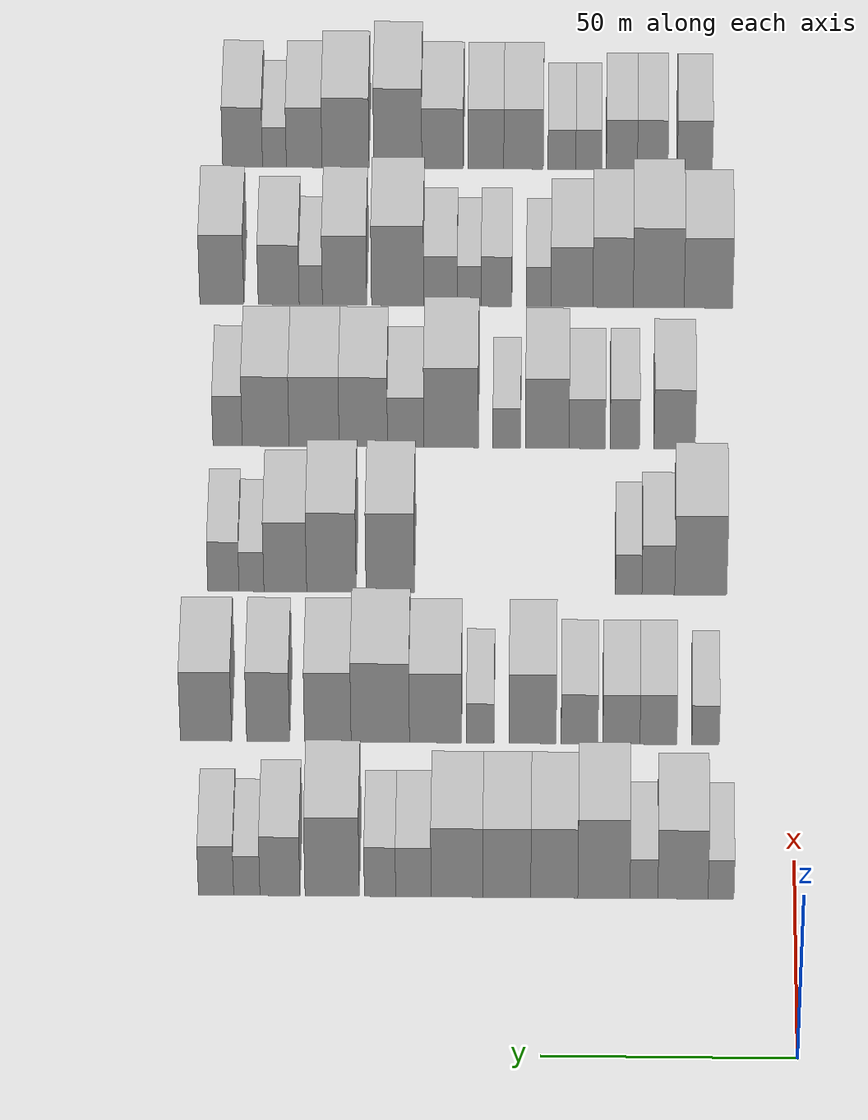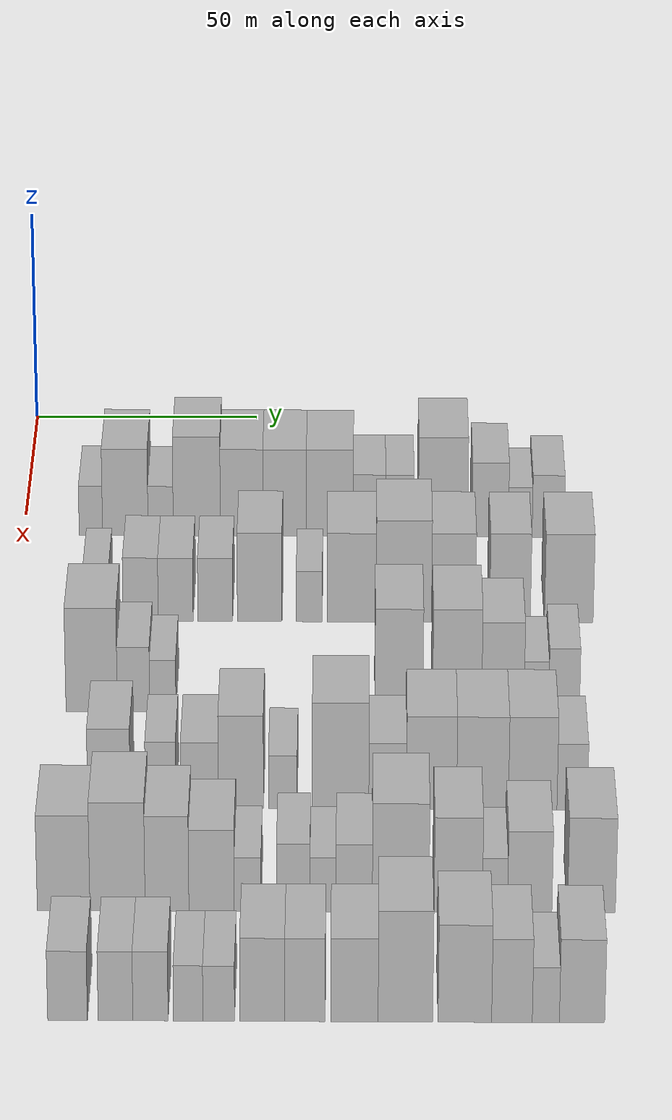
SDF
<sdf version="1.6">
 <world name="default">
  <model name="building_72">
   <static>1</static>
   <pose>50.0000 14.7348 0 0.000000 0.000000 0.000000</pose>
   <link name="link">
    <pose>0 0 6.00 0 0 0</pose>
    <collision name="collision"><geometry><box><size>20.0000 5.1048 12.0000</size></box></geometry></collision>
    <visual name="visual">
     <cast_shadows>0</cast_shadows>
     <geometry><box><size>20.0000 5.1048 12.0000</size></box></geometry>
     <material>
      <script>
       <uri>model://HANNAS_wall/materials/scripts</uri>
       <uri>model://HANNAS_wall/materials/textures</uri>
       <name>vrc/HANNAS_wall</name>
      </script>
     </material>
    </visual>
   </link>
  </model>
  <model name="building_73">
   <static>1</static>
   <pose>50.0000 22.2500 0 0.000000 0.000000 0.000000</pose>
   <link name="link">
    <pose>0 0 10.50 0 0 0</pose>
    <collision name="collision"><geometry><box><size>20.0000 9.9254 21.0000</size></box></geometry></collision>
    <visual name="visual">
     <cast_shadows>0</cast_shadows>
     <geometry><box><size>20.0000 9.9254 21.0000</size></box></geometry>
     <material>
      <script>
       <uri>model://HANNAS_wall/materials/scripts</uri>
       <uri>model://HANNAS_wall/materials/textures</uri>
       <name>vrc/HANNAS_wall</name>
      </script>
     </material>
    </visual>
   </link>
  </model>
  <model name="building_74">
   <static>1</static>
   <pose>50.0000 29.9666 0 0.000000 0.000000 0.000000</pose>
   <link name="link">
    <pose>0 0 6.00 0 0 0</pose>
    <collision name="collision"><geometry><box><size>20.0000 5.5080 12.0000</size></box></geometry></collision>
    <visual name="visual">
     <cast_shadows>0</cast_shadows>
     <geometry><box><size>20.0000 5.5080 12.0000</size></box></geometry>
     <material>
      <script>
       <uri>model://HANNAS_wall/materials/scripts</uri>
       <uri>model://HANNAS_wall/materials/textures</uri>
       <name>vrc/HANNAS_wall</name>
      </script>
     </material>
    </visual>
   </link>
  </model>
  <model name="building_75">
   <static>1</static>
   <pose>50.0000 37.8529 0 0.000000 0.000000 0.000000</pose>
   <link name="link">
    <pose>0 0 12.00 0 0 0</pose>
    <collision name="collision"><geometry><box><size>20.0000 10.2645 24.0000</size></box></geometry></collision>
    <visual name="visual">
     <cast_shadows>0</cast_shadows>
     <geometry><box><size>20.0000 10.2645 24.0000</size></box></geometry>
     <material>
      <script>
       <uri>model://HANNAS_wall/materials/scripts</uri>
       <uri>model://HANNAS_wall/materials/textures</uri>
       <name>vrc/HANNAS_wall</name>
      </script>
     </material>
    </visual>
   </link>
  </model>
  <model name="building_76">
   <static>1</static>
   <pose>50.0000 47.6280 0 0.000000 0.000000 0.000000</pose>
   <link name="link">
    <pose>0 0 10.50 0 0 0</pose>
    <collision name="collision"><geometry><box><size>20.0000 9.2857 21.0000</size></box></geometry></collision>
    <visual name="visual">
     <cast_shadows>0</cast_shadows>
     <geometry><box><size>20.0000 9.2857 21.0000</size></box></geometry>
     <material>
      <script>
       <uri>model://HANNAS_wall/materials/scripts</uri>
       <uri>model://HANNAS_wall/materials/textures</uri>
       <name>vrc/HANNAS_wall</name>
      </script>
     </material>
    </visual>
   </link>
  </model>
  <model name="building_77">
   <static>1</static>
   <pose>50.0000 57.0059 0 0.000000 0.000000 0.000000</pose>
   <link name="link">
    <pose>0 0 10.50 0 0 0</pose>
    <collision name="collision"><geometry><box><size>20.0000 9.4702 21.0000</size></box></geometry></collision>
    <visual name="visual">
     <cast_shadows>0</cast_shadows>
     <geometry><box><size>20.0000 9.4702 21.0000</size></box></geometry>
     <material>
      <script>
       <uri>model://HANNAS_wall/materials/scripts</uri>
       <uri>model://HANNAS_wall/materials/textures</uri>
       <name>vrc/HANNAS_wall</name>
      </script>
     </material>
    </visual>
   </link>
  </model>
  <model name="building_78">
   <static>1</static>
   <pose>50.0000 66.8543 0 0.000000 0.000000 0.000000</pose>
   <link name="link">
    <pose>0 0 10.50 0 0 0</pose>
    <collision name="collision"><geometry><box><size>20.0000 10.2266 21.0000</size></box></geometry></collision>
    <visual name="visual">
     <cast_shadows>0</cast_shadows>
     <geometry><box><size>20.0000 10.2266 21.0000</size></box></geometry>
     <material>
      <script>
       <uri>model://HANNAS_wall/materials/scripts</uri>
       <uri>model://HANNAS_wall/materials/textures</uri>
       <name>vrc/HANNAS_wall</name>
      </script>
     </material>
    </visual>
   </link>
  </model>
  <model name="building_79">
   <static>1</static>
   <pose>50.0000 75.4647 0 0.000000 0.000000 0.000000</pose>
   <link name="link">
    <pose>0 0 7.50 0 0 0</pose>
    <collision name="collision"><geometry><box><size>20.0000 6.9942 15.0000</size></box></geometry></collision>
    <visual name="visual">
     <cast_shadows>0</cast_shadows>
     <geometry><box><size>20.0000 6.9942 15.0000</size></box></geometry>
     <material>
      <script>
       <uri>model://HANNAS_wall/materials/scripts</uri>
       <uri>model://HANNAS_wall/materials/textures</uri>
       <name>vrc/HANNAS_wall</name>
      </script>
     </material>
    </visual>
   </link>
  </model>
  <model name="building_80">
   <static>1</static>
   <pose>50.0000 82.0440 0 0.000000 0.000000 0.000000</pose>
   <link name="link">
    <pose>0 0 7.50 0 0 0</pose>
    <collision name="collision"><geometry><box><size>20.0000 6.1644 15.0000</size></box></geometry></collision>
    <visual name="visual">
     <cast_shadows>0</cast_shadows>
     <geometry><box><size>20.0000 6.1644 15.0000</size></box></geometry>
     <material>
      <script>
       <uri>model://HANNAS_wall/materials/scripts</uri>
       <uri>model://HANNAS_wall/materials/textures</uri>
       <name>vrc/HANNAS_wall</name>
      </script>
     </material>
    </visual>
   </link>
  </model>
  <model name="building_81">
   <static>1</static>
   <pose>50.0000 91.4857 0 0.000000 0.000000 0.000000</pose>
   <link name="link">
    <pose>0 0 12.00 0 0 0</pose>
    <collision name="collision"><geometry><box><size>20.0000 10.7189 24.0000</size></box></geometry></collision>
    <visual name="visual">
     <cast_shadows>0</cast_shadows>
     <geometry><box><size>20.0000 10.7189 24.0000</size></box></geometry>
     <material>
      <script>
       <uri>model://HANNAS_wall/materials/scripts</uri>
       <uri>model://HANNAS_wall/materials/textures</uri>
       <name>vrc/HANNAS_wall</name>
      </script>
     </material>
    </visual>
   </link>
  </model>
  <model name="building_82">
   <static>1</static>
   <pose>50.0000 101.7995 0 0.000000 0.000000 0.000000</pose>
   <link name="link">
    <pose>0 0 9.00 0 0 0</pose>
    <collision name="collision"><geometry><box><size>20.0000 7.9089 18.0000</size></box></geometry></collision>
    <visual name="visual">
     <cast_shadows>0</cast_shadows>
     <geometry><box><size>20.0000 7.9089 18.0000</size></box></geometry>
     <material>
      <script>
       <uri>model://HANNAS_wall/materials/scripts</uri>
       <uri>model://HANNAS_wall/materials/textures</uri>
       <name>vrc/HANNAS_wall</name>
      </script>
     </material>
    </visual>
   </link>
  </model>
  <model name="building_83">
   <static>1</static>
   <pose>50.0000 108.3506 0 0.000000 0.000000 0.000000</pose>
   <link name="link">
    <pose>0 0 6.00 0 0 0</pose>
    <collision name="collision"><geometry><box><size>20.0000 5.1933 12.0000</size></box></geometry></collision>
    <visual name="visual">
     <cast_shadows>0</cast_shadows>
     <geometry><box><size>20.0000 5.1933 12.0000</size></box></geometry>
     <material>
      <script>
       <uri>model://HANNAS_wall/materials/scripts</uri>
       <uri>model://HANNAS_wall/materials/textures</uri>
       <name>vrc/HANNAS_wall</name>
      </script>
     </material>
    </visual>
   </link>
  </model>
  <model name="building_84">
   <static>1</static>
   <pose>50.0000 114.4196 0 0.000000 0.000000 0.000000</pose>
   <link name="link">
    <pose>0 0 7.50 0 0 0</pose>
    <collision name="collision"><geometry><box><size>20.0000 6.9446 15.0000</size></box></geometry></collision>
    <visual name="visual">
     <cast_shadows>0</cast_shadows>
     <geometry><box><size>20.0000 6.9446 15.0000</size></box></geometry>
     <material>
      <script>
       <uri>model://HANNAS_wall/materials/scripts</uri>
       <uri>model://HANNAS_wall/materials/textures</uri>
       <name>vrc/HANNAS_wall</name>
      </script>
     </material>
    </visual>
   </link>
  </model>
  <model name="building_215">
   <static>1</static>
   <pose>90.0000 17.5493 0 0.000000 0.000000 0.000000</pose>
   <link name="link">
    <pose>0 0 6.00 0 0 0</pose>
    <collision name="collision"><geometry><box><size>20.0000 5.4625 12.0000</size></box></geometry></collision>
    <visual name="visual">
     <cast_shadows>0</cast_shadows>
     <geometry><box><size>20.0000 5.4625 12.0000</size></box></geometry>
     <material>
      <script>
       <uri>model://HANNAS_wall/materials/scripts</uri>
       <uri>model://HANNAS_wall/materials/textures</uri>
       <name>vrc/HANNAS_wall</name>
      </script>
     </material>
    </visual>
   </link>
  </model>
  <model name="building_216">
   <static>1</static>
   <pose>90.0000 26.9923 0 0.000000 0.000000 0.000000</pose>
   <link name="link">
    <pose>0 0 7.50 0 0 0</pose>
    <collision name="collision"><geometry><box><size>20.0000 7.4236 15.0000</size></box></geometry></collision>
    <visual name="visual">
     <cast_shadows>0</cast_shadows>
     <geometry><box><size>20.0000 7.4236 15.0000</size></box></geometry>
     <material>
      <script>
       <uri>model://HANNAS_wall/materials/scripts</uri>
       <uri>model://HANNAS_wall/materials/textures</uri>
       <name>vrc/HANNAS_wall</name>
      </script>
     </material>
    </visual>
   </link>
  </model>
  <model name="building_217">
   <static>1</static>
   <pose>90.0000 34.4051 0 0.000000 0.000000 0.000000</pose>
   <link name="link">
    <pose>0 0 7.50 0 0 0</pose>
    <collision name="collision"><geometry><box><size>20.0000 7.4021 15.0000</size></box></geometry></collision>
    <visual name="visual">
     <cast_shadows>0</cast_shadows>
     <geometry><box><size>20.0000 7.4021 15.0000</size></box></geometry>
     <material>
      <script>
       <uri>model://HANNAS_wall/materials/scripts</uri>
       <uri>model://HANNAS_wall/materials/textures</uri>
       <name>vrc/HANNAS_wall</name>
      </script>
     </material>
    </visual>
   </link>
  </model>
  <model name="building_218">
   <static>1</static>
   <pose>90.0000 42.7882 0 0.000000 0.000000 0.000000</pose>
   <link name="link">
    <pose>0 0 7.50 0 0 0</pose>
    <collision name="collision"><geometry><box><size>20.0000 7.3640 15.0000</size></box></geometry></collision>
    <visual name="visual">
     <cast_shadows>0</cast_shadows>
     <geometry><box><size>20.0000 7.3640 15.0000</size></box></geometry>
     <material>
      <script>
       <uri>model://HANNAS_wall/materials/scripts</uri>
       <uri>model://HANNAS_wall/materials/textures</uri>
       <name>vrc/HANNAS_wall</name>
      </script>
     </material>
    </visual>
   </link>
  </model>
  <model name="building_219">
   <static>1</static>
   <pose>90.0000 52.2006 0 0.000000 0.000000 0.000000</pose>
   <link name="link">
    <pose>0 0 10.50 0 0 0</pose>
    <collision name="collision"><geometry><box><size>20.0000 9.4609 21.0000</size></box></geometry></collision>
    <visual name="visual">
     <cast_shadows>0</cast_shadows>
     <geometry><box><size>20.0000 9.4609 21.0000</size></box></geometry>
     <material>
      <script>
       <uri>model://HANNAS_wall/materials/scripts</uri>
       <uri>model://HANNAS_wall/materials/textures</uri>
       <name>vrc/HANNAS_wall</name>
      </script>
     </material>
    </visual>
   </link>
  </model>
  <model name="building_220">
   <static>1</static>
   <pose>90.0000 62.6886 0 0.000000 0.000000 0.000000</pose>
   <link name="link">
    <pose>0 0 6.00 0 0 0</pose>
    <collision name="collision"><geometry><box><size>20.0000 5.5152 12.0000</size></box></geometry></collision>
    <visual name="visual">
     <cast_shadows>0</cast_shadows>
     <geometry><box><size>20.0000 5.5152 12.0000</size></box></geometry>
     <material>
      <script>
       <uri>model://HANNAS_wall/materials/scripts</uri>
       <uri>model://HANNAS_wall/materials/textures</uri>
       <name>vrc/HANNAS_wall</name>
      </script>
     </material>
    </visual>
   </link>
  </model>
  <model name="building_221">
   <static>1</static>
   <pose>90.0000 71.6582 0 0.000000 0.000000 0.000000</pose>
   <link name="link">
    <pose>0 0 10.50 0 0 0</pose>
    <collision name="collision"><geometry><box><size>20.0000 10.4239 21.0000</size></box></geometry></collision>
    <visual name="visual">
     <cast_shadows>0</cast_shadows>
     <geometry><box><size>20.0000 10.4239 21.0000</size></box></geometry>
     <material>
      <script>
       <uri>model://HANNAS_wall/materials/scripts</uri>
       <uri>model://HANNAS_wall/materials/textures</uri>
       <name>vrc/HANNAS_wall</name>
      </script>
     </material>
    </visual>
   </link>
  </model>
  <model name="building_222">
   <static>1</static>
   <pose>90.0000 82.7144 0 0.000000 0.000000 0.000000</pose>
   <link name="link">
    <pose>0 0 12.00 0 0 0</pose>
    <collision name="collision"><geometry><box><size>20.0000 11.6887 24.0000</size></box></geometry></collision>
    <visual name="visual">
     <cast_shadows>0</cast_shadows>
     <geometry><box><size>20.0000 11.6887 24.0000</size></box></geometry>
     <material>
      <script>
       <uri>model://HANNAS_wall/materials/scripts</uri>
       <uri>model://HANNAS_wall/materials/textures</uri>
       <name>vrc/HANNAS_wall</name>
      </script>
     </material>
    </visual>
   </link>
  </model>
  <model name="building_223">
   <static>1</static>
   <pose>90.0000 93.2110 0 0.000000 0.000000 0.000000</pose>
   <link name="link">
    <pose>0 0 10.50 0 0 0</pose>
    <collision name="collision"><geometry><box><size>20.0000 9.3045 21.0000</size></box></geometry></collision>
    <visual name="visual">
     <cast_shadows>0</cast_shadows>
     <geometry><box><size>20.0000 9.3045 21.0000</size></box></geometry>
     <material>
      <script>
       <uri>model://HANNAS_wall/materials/scripts</uri>
       <uri>model://HANNAS_wall/materials/textures</uri>
       <name>vrc/HANNAS_wall</name>
      </script>
     </material>
    </visual>
   </link>
  </model>
  <model name="building_224">
   <static>1</static>
   <pose>90.0000 105.1728 0 0.000000 0.000000 0.000000</pose>
   <link name="link">
    <pose>0 0 10.50 0 0 0</pose>
    <collision name="collision"><geometry><box><size>20.0000 8.6189 21.0000</size></box></geometry></collision>
    <visual name="visual">
     <cast_shadows>0</cast_shadows>
     <geometry><box><size>20.0000 8.6189 21.0000</size></box></geometry>
     <material>
      <script>
       <uri>model://HANNAS_wall/materials/scripts</uri>
       <uri>model://HANNAS_wall/materials/textures</uri>
       <name>vrc/HANNAS_wall</name>
      </script>
     </material>
    </visual>
   </link>
  </model>
  <model name="building_225">
   <static>1</static>
   <pose>90.0000 117.6259 0 0.000000 0.000000 0.000000</pose>
   <link name="link">
    <pose>0 0 10.50 0 0 0</pose>
    <collision name="collision"><geometry><box><size>20.0000 10.2873 21.0000</size></box></geometry></collision>
    <visual name="visual">
     <cast_shadows>0</cast_shadows>
     <geometry><box><size>20.0000 10.2873 21.0000</size></box></geometry>
     <material>
      <script>
       <uri>model://HANNAS_wall/materials/scripts</uri>
       <uri>model://HANNAS_wall/materials/textures</uri>
       <name>vrc/HANNAS_wall</name>
      </script>
     </material>
    </visual>
   </link>
  </model>
  <model name="building_355">
   <static>1</static>
   <pose>130.0000 18.3185 0 0.000000 0.000000 0.000000</pose>
   <link name="link">
    <pose>0 0 12.00 0 0 0</pose>
    <collision name="collision"><geometry><box><size>20.0000 10.5623 24.0000</size></box></geometry></collision>
    <visual name="visual">
     <cast_shadows>0</cast_shadows>
     <geometry><box><size>20.0000 10.5623 24.0000</size></box></geometry>
     <material>
      <script>
       <uri>model://HANNAS_wall/materials/scripts</uri>
       <uri>model://HANNAS_wall/materials/textures</uri>
       <name>vrc/HANNAS_wall</name>
      </script>
     </material>
    </visual>
   </link>
  </model>
  <model name="building_356">
   <static>1</static>
   <pose>130.0000 26.9255 0 0.000000 0.000000 0.000000</pose>
   <link name="link">
    <pose>0 0 7.50 0 0 0</pose>
    <collision name="collision"><geometry><box><size>20.0000 6.6515 15.0000</size></box></geometry></collision>
    <visual name="visual">
     <cast_shadows>0</cast_shadows>
     <geometry><box><size>20.0000 6.6515 15.0000</size></box></geometry>
     <material>
      <script>
       <uri>model://HANNAS_wall/materials/scripts</uri>
       <uri>model://HANNAS_wall/materials/textures</uri>
       <name>vrc/HANNAS_wall</name>
      </script>
     </material>
    </visual>
   </link>
  </model>
  <model name="building_357">
   <static>1</static>
   <pose>130.0000 32.9451 0 0.000000 0.000000 0.000000</pose>
   <link name="link">
    <pose>0 0 6.00 0 0 0</pose>
    <collision name="collision"><geometry><box><size>20.0000 5.3878 12.0000</size></box></geometry></collision>
    <visual name="visual">
     <cast_shadows>0</cast_shadows>
     <geometry><box><size>20.0000 5.3878 12.0000</size></box></geometry>
     <material>
      <script>
       <uri>model://HANNAS_wall/materials/scripts</uri>
       <uri>model://HANNAS_wall/materials/textures</uri>
       <name>vrc/HANNAS_wall</name>
      </script>
     </material>
    </visual>
   </link>
  </model>
  <model name="building_358">
   <static>1</static>
   <pose>130.0000 81.4116 0 0.000000 0.000000 0.000000</pose>
   <link name="link">
    <pose>0 0 12.00 0 0 0</pose>
    <collision name="collision"><geometry><box><size>20.0000 9.8484 24.0000</size></box></geometry></collision>
    <visual name="visual">
     <cast_shadows>0</cast_shadows>
     <geometry><box><size>20.0000 9.8484 24.0000</size></box></geometry>
     <material>
      <script>
       <uri>model://HANNAS_wall/materials/scripts</uri>
       <uri>model://HANNAS_wall/materials/textures</uri>
       <name>vrc/HANNAS_wall</name>
      </script>
     </material>
    </visual>
   </link>
  </model>
  <model name="building_359">
   <static>1</static>
   <pose>130.0000 93.3656 0 0.000000 0.000000 0.000000</pose>
   <link name="link">
    <pose>0 0 12.00 0 0 0</pose>
    <collision name="collision"><geometry><box><size>20.0000 10.0596 24.0000</size></box></geometry></collision>
    <visual name="visual">
     <cast_shadows>0</cast_shadows>
     <geometry><box><size>20.0000 10.0596 24.0000</size></box></geometry>
     <material>
      <script>
       <uri>model://HANNAS_wall/materials/scripts</uri>
       <uri>model://HANNAS_wall/materials/textures</uri>
       <name>vrc/HANNAS_wall</name>
      </script>
     </material>
    </visual>
   </link>
  </model>
  <model name="building_360">
   <static>1</static>
   <pose>130.0000 102.7428 0 0.000000 0.000000 0.000000</pose>
   <link name="link">
    <pose>0 0 10.50 0 0 0</pose>
    <collision name="collision"><geometry><box><size>20.0000 8.6949 21.0000</size></box></geometry></collision>
    <visual name="visual">
     <cast_shadows>0</cast_shadows>
     <geometry><box><size>20.0000 8.6949 21.0000</size></box></geometry>
     <material>
      <script>
       <uri>model://HANNAS_wall/materials/scripts</uri>
       <uri>model://HANNAS_wall/materials/textures</uri>
       <name>vrc/HANNAS_wall</name>
      </script>
     </material>
    </visual>
   </link>
  </model>
  <model name="building_361">
   <static>1</static>
   <pose>130.0000 109.6250 0 0.000000 0.000000 0.000000</pose>
   <link name="link">
    <pose>0 0 6.00 0 0 0</pose>
    <collision name="collision"><geometry><box><size>20.0000 5.0695 12.0000</size></box></geometry></collision>
    <visual name="visual">
     <cast_shadows>0</cast_shadows>
     <geometry><box><size>20.0000 5.0695 12.0000</size></box></geometry>
     <material>
      <script>
       <uri>model://HANNAS_wall/materials/scripts</uri>
       <uri>model://HANNAS_wall/materials/textures</uri>
       <name>vrc/HANNAS_wall</name>
      </script>
     </material>
    </visual>
   </link>
  </model>
  <model name="building_362">
   <static>1</static>
   <pose>130.0000 115.3264 0 0.000000 0.000000 0.000000</pose>
   <link name="link">
    <pose>0 0 7.50 0 0 0</pose>
    <collision name="collision"><geometry><box><size>20.0000 6.3334 15.0000</size></box></geometry></collision>
    <visual name="visual">
     <cast_shadows>0</cast_shadows>
     <geometry><box><size>20.0000 6.3334 15.0000</size></box></geometry>
     <material>
      <script>
       <uri>model://HANNAS_wall/materials/scripts</uri>
       <uri>model://HANNAS_wall/materials/textures</uri>
       <name>vrc/HANNAS_wall</name>
      </script>
     </material>
    </visual>
   </link>
  </model>
  <model name="building_486">
   <static>1</static>
   <pose>170.0000 23.4883 0 0.000000 0.000000 0.000000</pose>
   <link name="link">
    <pose>0 0 9.00 0 0 0</pose>
    <collision name="collision"><geometry><box><size>20.0000 8.4759 18.0000</size></box></geometry></collision>
    <visual name="visual">
     <cast_shadows>0</cast_shadows>
     <geometry><box><size>20.0000 8.4759 18.0000</size></box></geometry>
     <material>
      <script>
       <uri>model://HANNAS_wall/materials/scripts</uri>
       <uri>model://HANNAS_wall/materials/textures</uri>
       <name>vrc/HANNAS_wall</name>
      </script>
     </material>
    </visual>
   </link>
  </model>
  <model name="building_487">
   <static>1</static>
   <pose>170.0000 33.7559 0 0.000000 0.000000 0.000000</pose>
   <link name="link">
    <pose>0 0 7.50 0 0 0</pose>
    <collision name="collision"><geometry><box><size>20.0000 6.0593 15.0000</size></box></geometry></collision>
    <visual name="visual">
     <cast_shadows>0</cast_shadows>
     <geometry><box><size>20.0000 6.0593 15.0000</size></box></geometry>
     <material>
      <script>
       <uri>model://HANNAS_wall/materials/scripts</uri>
       <uri>model://HANNAS_wall/materials/textures</uri>
       <name>vrc/HANNAS_wall</name>
      </script>
     </material>
    </visual>
   </link>
  </model>
  <model name="building_488">
   <static>1</static>
   <pose>170.0000 41.5181 0 0.000000 0.000000 0.000000</pose>
   <link name="link">
    <pose>0 0 7.50 0 0 0</pose>
    <collision name="collision"><geometry><box><size>20.0000 7.4650 15.0000</size></box></geometry></collision>
    <visual name="visual">
     <cast_shadows>0</cast_shadows>
     <geometry><box><size>20.0000 7.4650 15.0000</size></box></geometry>
     <material>
      <script>
       <uri>model://HANNAS_wall/materials/scripts</uri>
       <uri>model://HANNAS_wall/materials/textures</uri>
       <name>vrc/HANNAS_wall</name>
      </script>
     </material>
    </visual>
   </link>
  </model>
  <model name="building_489">
   <static>1</static>
   <pose>170.0000 49.7402 0 0.000000 0.000000 0.000000</pose>
   <link name="link">
    <pose>0 0 10.50 0 0 0</pose>
    <collision name="collision"><geometry><box><size>20.0000 8.9791 21.0000</size></box></geometry></collision>
    <visual name="visual">
     <cast_shadows>0</cast_shadows>
     <geometry><box><size>20.0000 8.9791 21.0000</size></box></geometry>
     <material>
      <script>
       <uri>model://HANNAS_wall/materials/scripts</uri>
       <uri>model://HANNAS_wall/materials/textures</uri>
       <name>vrc/HANNAS_wall</name>
      </script>
     </material>
    </visual>
   </link>
  </model>
  <model name="building_490">
   <static>1</static>
   <pose>170.0000 58.0812 0 0.000000 0.000000 0.000000</pose>
   <link name="link">
    <pose>0 0 6.00 0 0 0</pose>
    <collision name="collision"><geometry><box><size>20.0000 5.7029 12.0000</size></box></geometry></collision>
    <visual name="visual">
     <cast_shadows>0</cast_shadows>
     <geometry><box><size>20.0000 5.7029 12.0000</size></box></geometry>
     <material>
      <script>
       <uri>model://HANNAS_wall/materials/scripts</uri>
       <uri>model://HANNAS_wall/materials/textures</uri>
       <name>vrc/HANNAS_wall</name>
      </script>
     </material>
    </visual>
   </link>
  </model>
  <model name="building_491">
   <static>1</static>
   <pose>170.0000 69.5574 0 0.000000 0.000000 0.000000</pose>
   <link name="link">
    <pose>0 0 12.00 0 0 0</pose>
    <collision name="collision"><geometry><box><size>20.0000 11.2495 24.0000</size></box></geometry></collision>
    <visual name="visual">
     <cast_shadows>0</cast_shadows>
     <geometry><box><size>20.0000 11.2495 24.0000</size></box></geometry>
     <material>
      <script>
       <uri>model://HANNAS_wall/materials/scripts</uri>
       <uri>model://HANNAS_wall/materials/textures</uri>
       <name>vrc/HANNAS_wall</name>
      </script>
     </material>
    </visual>
   </link>
  </model>
  <model name="building_492">
   <static>1</static>
   <pose>170.0000 78.9302 0 0.000000 0.000000 0.000000</pose>
   <link name="link">
    <pose>0 0 7.50 0 0 0</pose>
    <collision name="collision"><geometry><box><size>20.0000 7.4961 15.0000</size></box></geometry></collision>
    <visual name="visual">
     <cast_shadows>0</cast_shadows>
     <geometry><box><size>20.0000 7.4961 15.0000</size></box></geometry>
     <material>
      <script>
       <uri>model://HANNAS_wall/materials/scripts</uri>
       <uri>model://HANNAS_wall/materials/textures</uri>
       <name>vrc/HANNAS_wall</name>
      </script>
     </material>
    </visual>
   </link>
  </model>
  <model name="building_493">
   <static>1</static>
   <pose>170.0000 87.6647 0 0.000000 0.000000 0.000000</pose>
   <link name="link">
    <pose>0 0 10.50 0 0 0</pose>
    <collision name="collision"><geometry><box><size>20.0000 9.9729 21.0000</size></box></geometry></collision>
    <visual name="visual">
     <cast_shadows>0</cast_shadows>
     <geometry><box><size>20.0000 9.9729 21.0000</size></box></geometry>
     <material>
      <script>
       <uri>model://HANNAS_wall/materials/scripts</uri>
       <uri>model://HANNAS_wall/materials/textures</uri>
       <name>vrc/HANNAS_wall</name>
      </script>
     </material>
    </visual>
   </link>
  </model>
  <model name="building_494">
   <static>1</static>
   <pose>170.0000 97.8048 0 0.000000 0.000000 0.000000</pose>
   <link name="link">
    <pose>0 0 10.50 0 0 0</pose>
    <collision name="collision"><geometry><box><size>20.0000 10.3072 21.0000</size></box></geometry></collision>
    <visual name="visual">
     <cast_shadows>0</cast_shadows>
     <geometry><box><size>20.0000 10.3072 21.0000</size></box></geometry>
     <material>
      <script>
       <uri>model://HANNAS_wall/materials/scripts</uri>
       <uri>model://HANNAS_wall/materials/textures</uri>
       <name>vrc/HANNAS_wall</name>
      </script>
     </material>
    </visual>
   </link>
  </model>
  <model name="building_495">
   <static>1</static>
   <pose>170.0000 107.7921 0 0.000000 0.000000 0.000000</pose>
   <link name="link">
    <pose>0 0 10.50 0 0 0</pose>
    <collision name="collision"><geometry><box><size>20.0000 9.6674 21.0000</size></box></geometry></collision>
    <visual name="visual">
     <cast_shadows>0</cast_shadows>
     <geometry><box><size>20.0000 9.6674 21.0000</size></box></geometry>
     <material>
      <script>
       <uri>model://HANNAS_wall/materials/scripts</uri>
       <uri>model://HANNAS_wall/materials/textures</uri>
       <name>vrc/HANNAS_wall</name>
      </script>
     </material>
    </visual>
   </link>
  </model>
  <model name="building_496">
   <static>1</static>
   <pose>170.0000 115.6505 0 0.000000 0.000000 0.000000</pose>
   <link name="link">
    <pose>0 0 7.50 0 0 0</pose>
    <collision name="collision"><geometry><box><size>20.0000 6.0492 15.0000</size></box></geometry></collision>
    <visual name="visual">
     <cast_shadows>0</cast_shadows>
     <geometry><box><size>20.0000 6.0492 15.0000</size></box></geometry>
     <material>
      <script>
       <uri>model://HANNAS_wall/materials/scripts</uri>
       <uri>model://HANNAS_wall/materials/textures</uri>
       <name>vrc/HANNAS_wall</name>
      </script>
     </material>
    </visual>
   </link>
  </model>
  <model name="building_622">
   <static>1</static>
   <pose>210.0000 16.3036 0 0.000000 0.000000 0.000000</pose>
   <link name="link">
    <pose>0 0 10.50 0 0 0</pose>
    <collision name="collision"><geometry><box><size>20.0000 10.1507 21.0000</size></box></geometry></collision>
    <visual name="visual">
     <cast_shadows>0</cast_shadows>
     <geometry><box><size>20.0000 10.1507 21.0000</size></box></geometry>
     <material>
      <script>
       <uri>model://HANNAS_wall/materials/scripts</uri>
       <uri>model://HANNAS_wall/materials/textures</uri>
       <name>vrc/HANNAS_wall</name>
      </script>
     </material>
    </visual>
   </link>
  </model>
  <model name="building_623">
   <static>1</static>
   <pose>210.0000 26.7003 0 0.000000 0.000000 0.000000</pose>
   <link name="link">
    <pose>0 0 12.00 0 0 0</pose>
    <collision name="collision"><geometry><box><size>20.0000 10.6427 24.0000</size></box></geometry></collision>
    <visual name="visual">
     <cast_shadows>0</cast_shadows>
     <geometry><box><size>20.0000 10.6427 24.0000</size></box></geometry>
     <material>
      <script>
       <uri>model://HANNAS_wall/materials/scripts</uri>
       <uri>model://HANNAS_wall/materials/textures</uri>
       <name>vrc/HANNAS_wall</name>
      </script>
     </material>
    </visual>
   </link>
  </model>
  <model name="building_624">
   <static>1</static>
   <pose>210.0000 36.2423 0 0.000000 0.000000 0.000000</pose>
   <link name="link">
    <pose>0 0 10.50 0 0 0</pose>
    <collision name="collision"><geometry><box><size>20.0000 8.4412 21.0000</size></box></geometry></collision>
    <visual name="visual">
     <cast_shadows>0</cast_shadows>
     <geometry><box><size>20.0000 8.4412 21.0000</size></box></geometry>
     <material>
      <script>
       <uri>model://HANNAS_wall/materials/scripts</uri>
       <uri>model://HANNAS_wall/materials/textures</uri>
       <name>vrc/HANNAS_wall</name>
      </script>
     </material>
    </visual>
   </link>
  </model>
  <model name="building_625">
   <static>1</static>
   <pose>210.0000 44.8315 0 0.000000 0.000000 0.000000</pose>
   <link name="link">
    <pose>0 0 9.00 0 0 0</pose>
    <collision name="collision"><geometry><box><size>20.0000 8.7373 18.0000</size></box></geometry></collision>
    <visual name="visual">
     <cast_shadows>0</cast_shadows>
     <geometry><box><size>20.0000 8.7373 18.0000</size></box></geometry>
     <material>
      <script>
       <uri>model://HANNAS_wall/materials/scripts</uri>
       <uri>model://HANNAS_wall/materials/textures</uri>
       <name>vrc/HANNAS_wall</name>
      </script>
     </material>
    </visual>
   </link>
  </model>
  <model name="building_626">
   <static>1</static>
   <pose>210.0000 51.7820 0 0.000000 0.000000 0.000000</pose>
   <link name="link">
    <pose>0 0 6.00 0 0 0</pose>
    <collision name="collision"><geometry><box><size>20.0000 5.1637 12.0000</size></box></geometry></collision>
    <visual name="visual">
     <cast_shadows>0</cast_shadows>
     <geometry><box><size>20.0000 5.1637 12.0000</size></box></geometry>
     <material>
      <script>
       <uri>model://HANNAS_wall/materials/scripts</uri>
       <uri>model://HANNAS_wall/materials/textures</uri>
       <name>vrc/HANNAS_wall</name>
      </script>
     </material>
    </visual>
   </link>
  </model>
  <model name="building_627">
   <static>1</static>
   <pose>210.0000 60.5786 0 0.000000 0.000000 0.000000</pose>
   <link name="link">
    <pose>0 0 7.50 0 0 0</pose>
    <collision name="collision"><geometry><box><size>20.0000 6.4294 15.0000</size></box></geometry></collision>
    <visual name="visual">
     <cast_shadows>0</cast_shadows>
     <geometry><box><size>20.0000 6.4294 15.0000</size></box></geometry>
     <material>
      <script>
       <uri>model://HANNAS_wall/materials/scripts</uri>
       <uri>model://HANNAS_wall/materials/textures</uri>
       <name>vrc/HANNAS_wall</name>
      </script>
     </material>
    </visual>
   </link>
  </model>
  <model name="building_628">
   <static>1</static>
   <pose>210.0000 66.2946 0 0.000000 0.000000 0.000000</pose>
   <link name="link">
    <pose>0 0 6.00 0 0 0</pose>
    <collision name="collision"><geometry><box><size>20.0000 5.0028 12.0000</size></box></geometry></collision>
    <visual name="visual">
     <cast_shadows>0</cast_shadows>
     <geometry><box><size>20.0000 5.0028 12.0000</size></box></geometry>
     <material>
      <script>
       <uri>model://HANNAS_wall/materials/scripts</uri>
       <uri>model://HANNAS_wall/materials/textures</uri>
       <name>vrc/HANNAS_wall</name>
      </script>
     </material>
    </visual>
   </link>
  </model>
  <model name="building_629">
   <static>1</static>
   <pose>210.0000 72.2993 0 0.000000 0.000000 0.000000</pose>
   <link name="link">
    <pose>0 0 7.50 0 0 0</pose>
    <collision name="collision"><geometry><box><size>20.0000 7.0065 15.0000</size></box></geometry></collision>
    <visual name="visual">
     <cast_shadows>0</cast_shadows>
     <geometry><box><size>20.0000 7.0065 15.0000</size></box></geometry>
     <material>
      <script>
       <uri>model://HANNAS_wall/materials/scripts</uri>
       <uri>model://HANNAS_wall/materials/textures</uri>
       <name>vrc/HANNAS_wall</name>
      </script>
     </material>
    </visual>
   </link>
  </model>
  <model name="building_630">
   <static>1</static>
   <pose>210.0000 81.2582 0 0.000000 0.000000 0.000000</pose>
   <link name="link">
    <pose>0 0 12.00 0 0 0</pose>
    <collision name="collision"><geometry><box><size>20.0000 10.9113 24.0000</size></box></geometry></collision>
    <visual name="visual">
     <cast_shadows>0</cast_shadows>
     <geometry><box><size>20.0000 10.9113 24.0000</size></box></geometry>
     <material>
      <script>
       <uri>model://HANNAS_wall/materials/scripts</uri>
       <uri>model://HANNAS_wall/materials/textures</uri>
       <name>vrc/HANNAS_wall</name>
      </script>
     </material>
    </visual>
   </link>
  </model>
  <model name="building_631">
   <static>1</static>
   <pose>210.0000 92.3520 0 0.000000 0.000000 0.000000</pose>
   <link name="link">
    <pose>0 0 10.50 0 0 0</pose>
    <collision name="collision"><geometry><box><size>20.0000 9.2762 21.0000</size></box></geometry></collision>
    <visual name="visual">
     <cast_shadows>0</cast_shadows>
     <geometry><box><size>20.0000 9.2762 21.0000</size></box></geometry>
     <material>
      <script>
       <uri>model://HANNAS_wall/materials/scripts</uri>
       <uri>model://HANNAS_wall/materials/textures</uri>
       <name>vrc/HANNAS_wall</name>
      </script>
     </material>
    </visual>
   </link>
  </model>
  <model name="building_632">
   <static>1</static>
   <pose>210.0000 99.4221 0 0.000000 0.000000 0.000000</pose>
   <link name="link">
    <pose>0 0 6.00 0 0 0</pose>
    <collision name="collision"><geometry><box><size>20.0000 4.8642 12.0000</size></box></geometry></collision>
    <visual name="visual">
     <cast_shadows>0</cast_shadows>
     <geometry><box><size>20.0000 4.8642 12.0000</size></box></geometry>
     <material>
      <script>
       <uri>model://HANNAS_wall/materials/scripts</uri>
       <uri>model://HANNAS_wall/materials/textures</uri>
       <name>vrc/HANNAS_wall</name>
      </script>
     </material>
    </visual>
   </link>
  </model>
  <model name="building_633">
   <static>1</static>
   <pose>210.0000 106.1320 0 0.000000 0.000000 0.000000</pose>
   <link name="link">
    <pose>0 0 9.00 0 0 0</pose>
    <collision name="collision"><geometry><box><size>20.0000 8.5555 18.0000</size></box></geometry></collision>
    <visual name="visual">
     <cast_shadows>0</cast_shadows>
     <geometry><box><size>20.0000 8.5555 18.0000</size></box></geometry>
     <material>
      <script>
       <uri>model://HANNAS_wall/materials/scripts</uri>
       <uri>model://HANNAS_wall/materials/textures</uri>
       <name>vrc/HANNAS_wall</name>
      </script>
     </material>
    </visual>
   </link>
  </model>
  <model name="building_634">
   <static>1</static>
   <pose>210.0000 118.0208 0 0.000000 0.000000 0.000000</pose>
   <link name="link">
    <pose>0 0 10.50 0 0 0</pose>
    <collision name="collision"><geometry><box><size>20.0000 9.2221 21.0000</size></box></geometry></collision>
    <visual name="visual">
     <cast_shadows>0</cast_shadows>
     <geometry><box><size>20.0000 9.2221 21.0000</size></box></geometry>
     <material>
      <script>
       <uri>model://HANNAS_wall/materials/scripts</uri>
       <uri>model://HANNAS_wall/materials/textures</uri>
       <name>vrc/HANNAS_wall</name>
      </script>
     </material>
    </visual>
   </link>
  </model>
  <model name="building_751">
   <static>1</static>
   <pose>250.0000 18.9138 0 0.000000 0.000000 0.000000</pose>
   <link name="link">
    <pose>0 0 7.50 0 0 0</pose>
    <collision name="collision"><geometry><box><size>20.0000 7.4143 15.0000</size></box></geometry></collision>
    <visual name="visual">
     <cast_shadows>0</cast_shadows>
     <geometry><box><size>20.0000 7.4143 15.0000</size></box></geometry>
     <material>
      <script>
       <uri>model://HANNAS_wall/materials/scripts</uri>
       <uri>model://HANNAS_wall/materials/textures</uri>
       <name>vrc/HANNAS_wall</name>
      </script>
     </material>
    </visual>
   </link>
  </model>
  <model name="building_752">
   <static>1</static>
   <pose>250.0000 27.8621 0 0.000000 0.000000 0.000000</pose>
   <link name="link">
    <pose>0 0 7.50 0 0 0</pose>
    <collision name="collision"><geometry><box><size>20.0000 6.4822 15.0000</size></box></geometry></collision>
    <visual name="visual">
     <cast_shadows>0</cast_shadows>
     <geometry><box><size>20.0000 6.4822 15.0000</size></box></geometry>
     <material>
      <script>
       <uri>model://HANNAS_wall/materials/scripts</uri>
       <uri>model://HANNAS_wall/materials/textures</uri>
       <name>vrc/HANNAS_wall</name>
      </script>
     </material>
    </visual>
   </link>
  </model>
  <model name="building_753">
   <static>1</static>
   <pose>250.0000 34.3866 0 0.000000 0.000000 0.000000</pose>
   <link name="link">
    <pose>0 0 7.50 0 0 0</pose>
    <collision name="collision"><geometry><box><size>20.0000 6.5670 15.0000</size></box></geometry></collision>
    <visual name="visual">
     <cast_shadows>0</cast_shadows>
     <geometry><box><size>20.0000 6.5670 15.0000</size></box></geometry>
     <material>
      <script>
       <uri>model://HANNAS_wall/materials/scripts</uri>
       <uri>model://HANNAS_wall/materials/textures</uri>
       <name>vrc/HANNAS_wall</name>
      </script>
     </material>
    </visual>
   </link>
  </model>
  <model name="building_754">
   <static>1</static>
   <pose>250.0000 41.4137 0 0.000000 0.000000 0.000000</pose>
   <link name="link">
    <pose>0 0 6.00 0 0 0</pose>
    <collision name="collision"><geometry><box><size>20.0000 5.4871 12.0000</size></box></geometry></collision>
    <visual name="visual">
     <cast_shadows>0</cast_shadows>
     <geometry><box><size>20.0000 5.4871 12.0000</size></box></geometry>
     <material>
      <script>
       <uri>model://HANNAS_wall/materials/scripts</uri>
       <uri>model://HANNAS_wall/materials/textures</uri>
       <name>vrc/HANNAS_wall</name>
      </script>
     </material>
    </visual>
   </link>
  </model>
  <model name="building_755">
   <static>1</static>
   <pose>250.0000 47.1043 0 0.000000 0.000000 0.000000</pose>
   <link name="link">
    <pose>0 0 6.00 0 0 0</pose>
    <collision name="collision"><geometry><box><size>20.0000 5.8942 12.0000</size></box></geometry></collision>
    <visual name="visual">
     <cast_shadows>0</cast_shadows>
     <geometry><box><size>20.0000 5.8942 12.0000</size></box></geometry>
     <material>
      <script>
       <uri>model://HANNAS_wall/materials/scripts</uri>
       <uri>model://HANNAS_wall/materials/textures</uri>
       <name>vrc/HANNAS_wall</name>
      </script>
     </material>
    </visual>
   </link>
  </model>
  <model name="building_756">
   <static>1</static>
   <pose>250.0000 55.2387 0 0.000000 0.000000 0.000000</pose>
   <link name="link">
    <pose>0 0 9.00 0 0 0</pose>
    <collision name="collision"><geometry><box><size>20.0000 8.3745 18.0000</size></box></geometry></collision>
    <visual name="visual">
     <cast_shadows>0</cast_shadows>
     <geometry><box><size>20.0000 8.3745 18.0000</size></box></geometry>
     <material>
      <script>
       <uri>model://HANNAS_wall/materials/scripts</uri>
       <uri>model://HANNAS_wall/materials/textures</uri>
       <name>vrc/HANNAS_wall</name>
      </script>
     </material>
    </visual>
   </link>
  </model>
  <model name="building_757">
   <static>1</static>
   <pose>250.0000 63.1962 0 0.000000 0.000000 0.000000</pose>
   <link name="link">
    <pose>0 0 9.00 0 0 0</pose>
    <collision name="collision"><geometry><box><size>20.0000 7.5405 18.0000</size></box></geometry></collision>
    <visual name="visual">
     <cast_shadows>0</cast_shadows>
     <geometry><box><size>20.0000 7.5405 18.0000</size></box></geometry>
     <material>
      <script>
       <uri>model://HANNAS_wall/materials/scripts</uri>
       <uri>model://HANNAS_wall/materials/textures</uri>
       <name>vrc/HANNAS_wall</name>
      </script>
     </material>
    </visual>
   </link>
  </model>
  <model name="building_758">
   <static>1</static>
   <pose>250.0000 72.3868 0 0.000000 0.000000 0.000000</pose>
   <link name="link">
    <pose>0 0 9.00 0 0 0</pose>
    <collision name="collision"><geometry><box><size>20.0000 8.8408 18.0000</size></box></geometry></collision>
    <visual name="visual">
     <cast_shadows>0</cast_shadows>
     <geometry><box><size>20.0000 8.8408 18.0000</size></box></geometry>
     <material>
      <script>
       <uri>model://HANNAS_wall/materials/scripts</uri>
       <uri>model://HANNAS_wall/materials/textures</uri>
       <name>vrc/HANNAS_wall</name>
      </script>
     </material>
    </visual>
   </link>
  </model>
  <model name="building_759">
   <static>1</static>
   <pose>250.0000 81.8982 0 0.000000 0.000000 0.000000</pose>
   <link name="link">
    <pose>0 0 12.00 0 0 0</pose>
    <collision name="collision"><geometry><box><size>20.0000 10.1820 24.0000</size></box></geometry></collision>
    <visual name="visual">
     <cast_shadows>0</cast_shadows>
     <geometry><box><size>20.0000 10.1820 24.0000</size></box></geometry>
     <material>
      <script>
       <uri>model://HANNAS_wall/materials/scripts</uri>
       <uri>model://HANNAS_wall/materials/textures</uri>
       <name>vrc/HANNAS_wall</name>
      </script>
     </material>
    </visual>
   </link>
  </model>
  <model name="building_760">
   <static>1</static>
   <pose>250.0000 92.9753 0 0.000000 0.000000 0.000000</pose>
   <link name="link">
    <pose>0 0 10.50 0 0 0</pose>
    <collision name="collision"><geometry><box><size>20.0000 9.9722 21.0000</size></box></geometry></collision>
    <visual name="visual">
     <cast_shadows>0</cast_shadows>
     <geometry><box><size>20.0000 9.9722 21.0000</size></box></geometry>
     <material>
      <script>
       <uri>model://HANNAS_wall/materials/scripts</uri>
       <uri>model://HANNAS_wall/materials/textures</uri>
       <name>vrc/HANNAS_wall</name>
      </script>
     </material>
    </visual>
   </link>
  </model>
  <model name="building_761">
   <static>1</static>
   <pose>250.0000 101.7492 0 0.000000 0.000000 0.000000</pose>
   <link name="link">
    <pose>0 0 9.00 0 0 0</pose>
    <collision name="collision"><geometry><box><size>20.0000 7.5756 18.0000</size></box></geometry></collision>
    <visual name="visual">
     <cast_shadows>0</cast_shadows>
     <geometry><box><size>20.0000 7.5756 18.0000</size></box></geometry>
     <material>
      <script>
       <uri>model://HANNAS_wall/materials/scripts</uri>
       <uri>model://HANNAS_wall/materials/textures</uri>
       <name>vrc/HANNAS_wall</name>
      </script>
     </material>
    </visual>
   </link>
  </model>
  <model name="building_762">
   <static>1</static>
   <pose>250.0000 108.0664 0 0.000000 0.000000 0.000000</pose>
   <link name="link">
    <pose>0 0 6.00 0 0 0</pose>
    <collision name="collision"><geometry><box><size>20.0000 5.0589 12.0000</size></box></geometry></collision>
    <visual name="visual">
     <cast_shadows>0</cast_shadows>
     <geometry><box><size>20.0000 5.0589 12.0000</size></box></geometry>
     <material>
      <script>
       <uri>model://HANNAS_wall/materials/scripts</uri>
       <uri>model://HANNAS_wall/materials/textures</uri>
       <name>vrc/HANNAS_wall</name>
      </script>
     </material>
    </visual>
   </link>
  </model>
  <model name="building_763">
   <static>1</static>
   <pose>250.0000 114.8140 0 0.000000 0.000000 0.000000</pose>
   <link name="link">
    <pose>0 0 9.00 0 0 0</pose>
    <collision name="collision"><geometry><box><size>20.0000 8.4364 18.0000</size></box></geometry></collision>
    <visual name="visual">
     <cast_shadows>0</cast_shadows>
     <geometry><box><size>20.0000 8.4364 18.0000</size></box></geometry>
     <material>
      <script>
       <uri>model://HANNAS_wall/materials/scripts</uri>
       <uri>model://HANNAS_wall/materials/textures</uri>
       <name>vrc/HANNAS_wall</name>
      </script>
     </material>
    </visual>
   </link>
  </model>
 </world>
</sdf>
